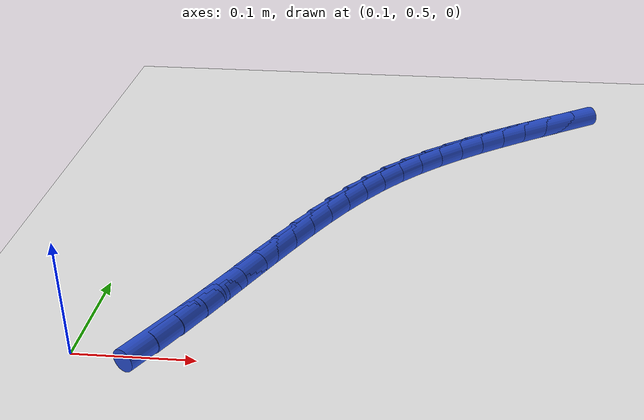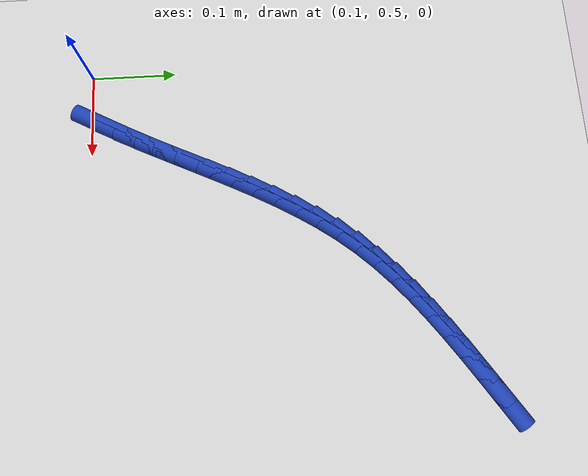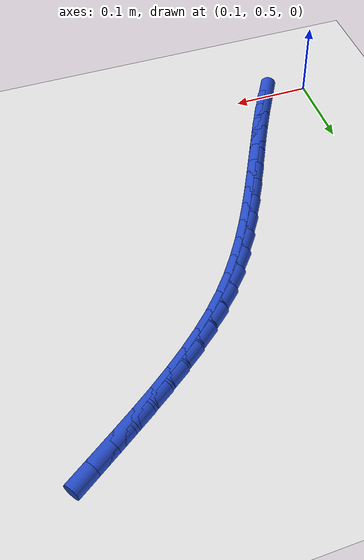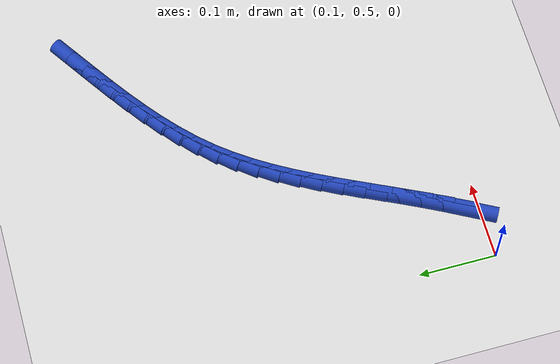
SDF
<sdf version="1.6">
 <world name="default">
  <model name="ground_plane">
   <static>1</static>
   <link name="link">
    <collision name="collision">
     <geometry><plane><normal>0 0 1</normal><size>100 100</size></plane></geometry>
     <surface><friction><ode><mu>100</mu><mu2>50</mu2></ode></friction></surface>
    </collision>
    <visual name="visual">
     <cast_shadows>0</cast_shadows>
     <geometry><plane><normal>0 0 1</normal><size>100 100</size></plane></geometry>
     <material>
      <script><uri>file://media/materials/scripts/gazebo.material</uri><name>Gazebo/WhiteGlow</name></script>
     </material>
    </visual>
   </link>
  </model>
  <model name="line">
   <link name="link_20">
    <pose>0.16709471917361773 0.5175838802384337 0.01 0 1.57 1.0775820916153824</pose>
    <collision name="collision">
     <geometry><cylinder><radius>0.01</radius><length>0.08</length></cylinder></geometry>
    </collision>
    <visual name="visual">
     <material>
      <script><name>Gazebo/Blue</name><uri>file://media/materials/scripts/gazebo.material</uri></script>
     </material>
     <geometry><cylinder><radius>0.01</radius><length>0.08</length></cylinder></geometry>
    </visual>
   </link>
   <link name="link_21">
    <pose>0.18039531182807303 0.5423280665319001 0.01 0 1.57 1.0977726013681997</pose>
    <collision name="collision">
     <geometry><cylinder><radius>0.01</radius><length>0.08</length></cylinder></geometry>
    </collision>
    <visual name="visual">
     <material>
      <script><name>Gazebo/Blue</name><uri>file://media/materials/scripts/gazebo.material</uri></script>
     </material>
     <geometry><cylinder><radius>0.01</radius><length>0.08</length></cylinder></geometry>
    </visual>
   </link>
   <link name="link_22">
    <pose>0.19322183296180745 0.5673908454800407 0.01 0 1.57 1.1146981909680427</pose>
    <collision name="collision">
     <geometry><cylinder><radius>0.01</radius><length>0.08</length></cylinder></geometry>
    </collision>
    <visual name="visual">
     <material>
      <script><name>Gazebo/Blue</name><uri>file://media/materials/scripts/gazebo.material</uri></script>
     </material>
     <geometry><cylinder><radius>0.01</radius><length>0.08</length></cylinder></geometry>
    </visual>
   </link>
   <link name="link_23">
    <pose>0.2056394638610435 0.5927020351870578 0.01 0 1.57 1.1235948565228195</pose>
    <collision name="collision">
     <geometry><cylinder><radius>0.01</radius><length>0.08</length></cylinder></geometry>
    </collision>
    <visual name="visual">
     <material>
      <script><name>Gazebo/Blue</name><uri>file://media/materials/scripts/gazebo.material</uri></script>
     </material>
     <geometry><cylinder><radius>0.01</radius><length>0.08</length></cylinder></geometry>
    </visual>
   </link>
   <link name="link_24">
    <pose>0.21782795713044437 0.6181154747283278 0.01 0 1.57 1.124441121660151</pose>
    <collision name="collision">
     <geometry><cylinder><radius>0.01</radius><length>0.08</length></cylinder></geometry>
    </collision>
    <visual name="visual">
     <material>
      <script><name>Gazebo/Blue</name><uri>file://media/materials/scripts/gazebo.material</uri></script>
     </material>
     <geometry><cylinder><radius>0.01</radius><length>0.08</length></cylinder></geometry>
    </visual>
   </link>
   <link name="link_25">
    <pose>0.22996852875052537 0.6434840327280049 0.01 0 1.57 1.1171889957975858</pose>
    <collision name="collision">
     <geometry><cylinder><radius>0.01</radius><length>0.08</length></cylinder></geometry>
    </collision>
    <visual name="visual">
     <material>
      <script><name>Gazebo/Blue</name><uri>file://media/materials/scripts/gazebo.material</uri></script>
     </material>
     <geometry><cylinder><radius>0.01</radius><length>0.08</length></cylinder></geometry>
    </visual>
   </link>
   <link name="link_26">
    <pose>0.24224239470180195 0.6686605778102432 0.01 0 1.57 1.1016984920163764</pose>
    <collision name="collision">
     <geometry><cylinder><radius>0.01</radius><length>0.08</length></cylinder></geometry>
    </collision>
    <visual name="visual">
     <material>
      <script><name>Gazebo/Blue</name><uri>file://media/materials/scripts/gazebo.material</uri></script>
     </material>
     <geometry><cylinder><radius>0.01</radius><length>0.08</length></cylinder></geometry>
    </visual>
   </link>
   <link name="link_27">
    <pose>0.2548307709647893 0.693497978599197 0.01 0 1.57 1.0777481087682743</pose>
    <collision name="collision">
     <geometry><cylinder><radius>0.01</radius><length>0.08</length></cylinder></geometry>
    </collision>
    <visual name="visual">
     <material>
      <script><name>Gazebo/Blue</name><uri>file://media/materials/scripts/gazebo.material</uri></script>
     </material>
     <geometry><cylinder><radius>0.01</radius><length>0.08</length></cylinder></geometry>
    </visual>
   </link>
   <link name="link_28">
    <pose>0.26791487352000276 0.7178491037190204 0.01 0 1.57 1.0450621081243905</pose>
    <collision name="collision">
     <geometry><cylinder><radius>0.01</radius><length>0.08</length></cylinder></geometry>
    </collision>
    <visual name="visual">
     <material>
      <script><name>Gazebo/Blue</name><uri>file://media/materials/scripts/gazebo.material</uri></script>
     </material>
     <geometry><cylinder><radius>0.01</radius><length>0.08</length></cylinder></geometry>
    </visual>
   </link>
   <link name="link_29">
    <pose>0.2816759183479577 0.7415668217938671 0.01 0 1.57 1.0033594229734257</pose>
    <collision name="collision">
     <geometry><cylinder><radius>0.01</radius><length>0.08</length></cylinder></geometry>
    </collision>
    <visual name="visual">
     <material>
      <script><name>Gazebo/Blue</name><uri>file://media/materials/scripts/gazebo.material</uri></script>
     </material>
     <geometry><cylinder><radius>0.01</radius><length>0.08</length></cylinder></geometry>
    </visual>
   </link>
   <link name="link_30">
    <pose>0.29629512142916936 0.7645040014478914 0.01 0 1.57 0.9524297319721574</pose>
    <collision name="collision">
     <geometry><cylinder><radius>0.01</radius><length>0.08</length></cylinder></geometry>
    </collision>
    <visual name="visual">
     <material>
      <script><name>Gazebo/Blue</name><uri>file://media/materials/scripts/gazebo.material</uri></script>
     </material>
     <geometry><cylinder><radius>0.01</radius><length>0.08</length></cylinder></geometry>
    </visual>
   </link>
   <link name="link_31">
    <pose>0.31195369874415324 0.786513511305248 0.01 0 1.57 0.8922451277999253</pose>
    <collision name="collision">
     <geometry><cylinder><radius>0.01</radius><length>0.08</length></cylinder></geometry>
    </collision>
    <visual name="visual">
     <material>
      <script><name>Gazebo/Blue</name><uri>file://media/materials/scripts/gazebo.material</uri></script>
     </material>
     <geometry><cylinder><radius>0.01</radius><length>0.08</length></cylinder></geometry>
    </visual>
   </link>
   <link name="link_32">
    <pose>0.3288327598131049 0.8074483145710609 0.01 0 1.57 0.8270134765732842</pose>
    <collision name="collision">
     <geometry><cylinder><radius>0.01</radius><length>0.08</length></cylinder></geometry>
    </collision>
    <visual name="visual">
     <material>
      <script><name>Gazebo/Blue</name><uri>file://media/materials/scripts/gazebo.material</uri></script>
     </material>
     <geometry><cylinder><radius>0.01</radius><length>0.08</length></cylinder></geometry>
    </visual>
   </link>
   <link name="link_33">
    <pose>0.34703437385355645 0.827231595060143 0.01 0 1.57 0.7681656022143313</pose>
    <collision name="collision">
     <geometry><cylinder><radius>0.01</radius><length>0.08</length></cylinder></geometry>
    </collision>
    <visual name="visual">
     <material>
      <script><name>Gazebo/Blue</name><uri>file://media/materials/scripts/gazebo.material</uri></script>
     </material>
     <geometry><cylinder><radius>0.01</radius><length>0.08</length></cylinder></geometry>
    </visual>
   </link>
   <link name="link_34">
    <pose>0.3664415420731951 0.845981159946479 0.01 0 1.57 0.7178956034454843</pose>
    <collision name="collision">
     <geometry><cylinder><radius>0.01</radius><length>0.08</length></cylinder></geometry>
    </collision>
    <visual name="visual">
     <material>
      <script><name>Gazebo/Blue</name><uri>file://media/materials/scripts/gazebo.material</uri></script>
     </material>
     <geometry><cylinder><radius>0.01</radius><length>0.08</length></cylinder></geometry>
    </visual>
   </link>
   <link name="link_35">
    <pose>0.38689962414543977 0.8638482577168629 0.01 0 1.57 0.6762352392198641</pose>
    <collision name="collision">
     <geometry><cylinder><radius>0.01</radius><length>0.08</length></cylinder></geometry>
    </collision>
    <visual name="visual">
     <material>
      <script><name>Gazebo/Blue</name><uri>file://media/materials/scripts/gazebo.material</uri></script>
     </material>
     <geometry><cylinder><radius>0.01</radius><length>0.08</length></cylinder></geometry>
    </visual>
   </link>
   <link name="link_36">
    <pose>0.40825397974370914 0.8809841368580887 0.01 0 1.57 0.6430351210413477</pose>
    <collision name="collision">
     <geometry><cylinder><radius>0.01</radius><length>0.08</length></cylinder></geometry>
    </collision>
    <visual name="visual">
     <material>
      <script><name>Gazebo/Blue</name><uri>file://media/materials/scripts/gazebo.material</uri></script>
     </material>
     <geometry><cylinder><radius>0.01</radius><length>0.08</length></cylinder></geometry>
    </visual>
   </link>
   <link name="link_37">
    <pose>0.4303499685414217 0.8975400458569507 0.01 0 1.57 0.6180583444595277</pose>
    <collision name="collision">
     <geometry><cylinder><radius>0.01</radius><length>0.08</length></cylinder></geometry>
    </collision>
    <visual name="visual">
     <material>
      <script><name>Gazebo/Blue</name><uri>file://media/materials/scripts/gazebo.material</uri></script>
     </material>
     <geometry><cylinder><radius>0.01</radius><length>0.08</length></cylinder></geometry>
    </visual>
   </link>
   <link name="link_38">
    <pose>0.45303295021199663 0.9136672332002427 0.01 0 1.57 0.6010501927074017</pose>
    <collision name="collision">
     <geometry><cylinder><radius>0.01</radius><length>0.08</length></cylinder></geometry>
    </collision>
    <visual name="visual">
     <material>
      <script><name>Gazebo/Blue</name><uri>file://media/materials/scripts/gazebo.material</uri></script>
     </material>
     <geometry><cylinder><radius>0.01</radius><length>0.08</length></cylinder></geometry>
    </visual>
   </link>
   <link name="link_39">
    <pose>0.47614828442885226 0.9295169473747587 0.01 0 1.57 0.591784837662879</pose>
    <collision name="collision">
     <geometry><cylinder><radius>0.01</radius><length>0.08</length></cylinder></geometry>
    </collision>
    <visual name="visual">
     <material>
      <script><name>Gazebo/Blue</name><uri>file://media/materials/scripts/gazebo.material</uri></script>
     </material>
     <geometry><cylinder><radius>0.01</radius><length>0.08</length></cylinder></geometry>
    </visual>
   </link>
   <link name="link_40">
    <pose>0.49954133086540764 0.9452404368672928 0.01 0 1.57 0.590092878665583</pose>
    <collision name="collision">
     <geometry><cylinder><radius>0.01</radius><length>0.08</length></cylinder></geometry>
    </collision>
    <visual name="visual">
     <material>
      <script><name>Gazebo/Blue</name><uri>file://media/materials/scripts/gazebo.material</uri></script>
     </material>
     <geometry><cylinder><radius>0.01</radius><length>0.08</length></cylinder></geometry>
    </visual>
   </link>
  </model>
 </world>
</sdf>
